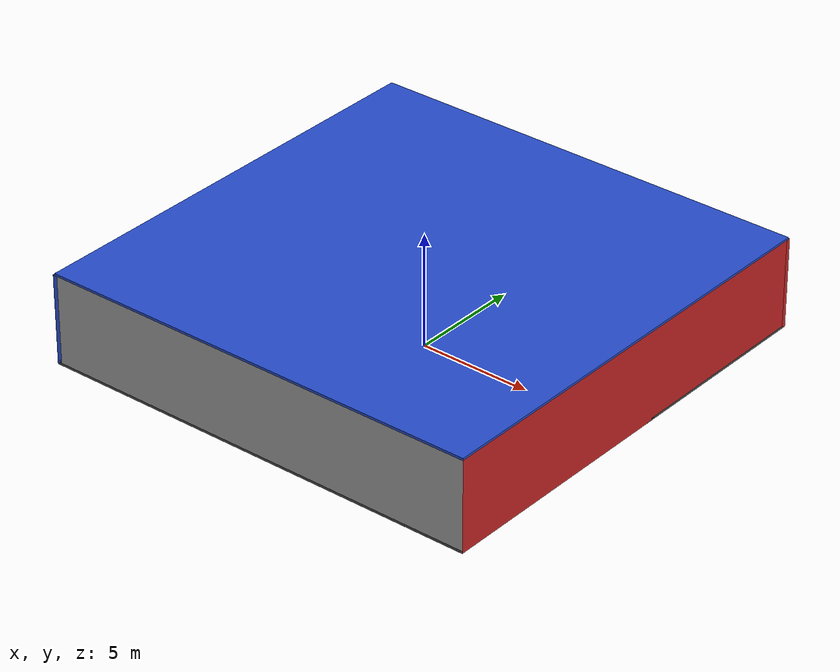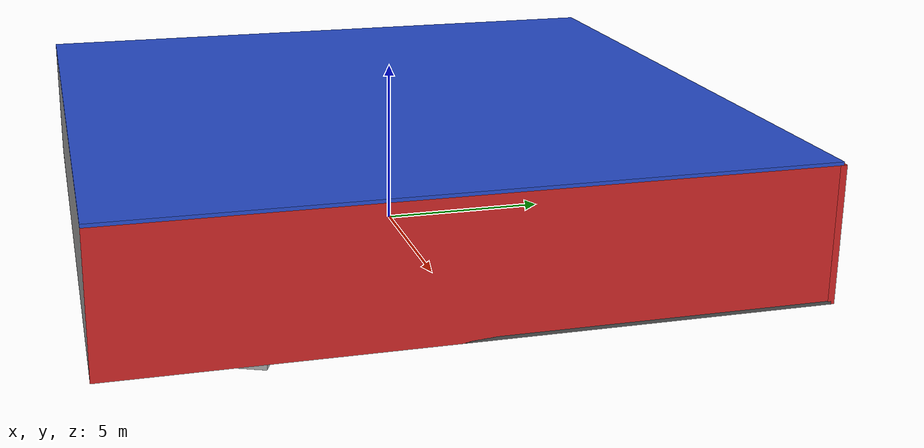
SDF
<sdf version="1.4">
 <world name="default">
  <physics type="ode">
   <max_step_size>0.001</max_step_size>
   <real_time_factor>1</real_time_factor>
   <real_time_update_rate>1000</real_time_update_rate>
   <gravity>0 0 -9.8</gravity>
  </physics>
  <scene><ambient>0.4 0.4 0.4 1</ambient><background>0.7 0.7 0.7 1</background><shadows>1</shadows></scene>
  <model name="Surrounding">
   <static>1</static>
   <link name="Ceiling">
    <collision name="Ceiling_Collision"><geometry><box><size>20 20 0.1</size></box></geometry></collision>
    <visual name="Ceiling_Visual">
     <geometry><box><size>20 20 0.1</size></box></geometry>
     <material>
      <script><uri>file://media/materials/scripts/gazebo.material</uri><name>Gazebo/BlueGlow</name></script>
     </material>
    </visual>
    <pose>0 0 4.05 0 0 0</pose>
   </link>
   <link name="Wall_South">
    <collision name="Wall_South_Collision">
     <geometry><box><size>20 0 4</size></box></geometry>
     <pose>0 0 2 0 -0 0</pose>
    </collision>
    <visual name="Wall_South_Visual">
     <pose>0 0 2 0 -0 0</pose>
     <geometry><box><size>20 0 4</size></box></geometry>
     <material>
      <script><uri>file://media/materials/scripts/gazebo.material</uri><name>Gazebo/GreyGradientSky</name></script>
     </material>
    </visual>
    <velocity_decay><linear>0</linear><angular>0</angular></velocity_decay>
    <pose>0 -10 0 0 -0 0</pose>
   </link>
   <link name="Wall_East">
    <collision name="Wall_21_Collision">
     <geometry><box><size>20 0 4</size></box></geometry>
     <pose>0 0 2 0 -0 0</pose>
    </collision>
    <visual name="Wall_21_Visual">
     <pose>0 0 2 0 -0 0</pose>
     <geometry><box><size>20 0 4</size></box></geometry>
     <material>
      <script><uri>file://media/materials/scripts/gazebo.material</uri><name>Gazebo/RedBright</name></script>
     </material>
    </visual>
    <velocity_decay><linear>0</linear><angular>0</angular></velocity_decay>
    <pose>10 0 0 0 -0 1.5708</pose>
   </link>
   <link name="Wall_North">
    <collision name="Wall_22_Collision">
     <geometry><box><size>20 0.2 4</size></box></geometry>
     <pose>0 0 2 0 -0 0</pose>
    </collision>
    <visual name="Wall_22_Visual">
     <pose>0 0 2 0 -0 0</pose>
     <geometry><box><size>20 0.2 4</size></box></geometry>
     <material>
      <script><uri>file://media/materials/scripts/gazebo.material</uri><name>Gazebo/RedBright</name></script>
     </material>
    </visual>
    <velocity_decay><linear>0</linear><angular>0</angular></velocity_decay>
    <pose>0 10 0 0 -0 0</pose>
   </link>
   <link name="Wall_West">
    <collision name="Wall_23_Collision">
     <geometry><box><size>20 0.2 4</size></box></geometry>
     <pose>0 0 2 0 -0 0</pose>
    </collision>
    <visual name="Wall_23_Visual">
     <pose>0 0 2 0 -0 0</pose>
     <geometry><box><size>20 0.2 4</size></box></geometry>
     <material>
      <script><uri>file://media/materials/scripts/gazebo.material</uri><name>Gazebo/BlueGlow</name></script>
     </material>
    </visual>
    <velocity_decay><linear>0</linear><angular>0</angular></velocity_decay>
    <pose>-10 0 0 0 0 -1.5708</pose>
   </link>
   <link name="Ground_link">
    <collision name="collision">
     <pose>0 0 .05 0 -0 0</pose>
     <geometry><box><size>20 20 0.1</size></box></geometry>
    </collision>
    <visual name="visual">
     <pose>0 0 .05 0 -0 0</pose>
     <geometry><box><size>20 20 0.1</size></box></geometry>
     <material>
      <script><uri>file://media/materials/scripts/gazebo.material</uri><name>Gazebo/Road</name></script>
     </material>
    </visual>
   </link>
   <static>1</static>
  </model>
  <spherical_coordinates>
   <surface_model>EARTH_WGS84</surface_model>
   <latitude_deg>0</latitude_deg>
   <longitude_deg>0</longitude_deg>
   <elevation>0</elevation>
   <heading_deg>0</heading_deg>
  </spherical_coordinates>
  <light name="lightball_0" type="diffuse">
   <diffuse>0.8 0.8 0.8 1</diffuse>
   <specular>0.2 0.2 0.2 1</specular>
   <attenuation>
    <range>100</range>
    <constant>0.7</constant>
    <linear>0.01</linear>
    <quadratic>0.001</quadratic>
   </attenuation>
   <direction>-0.5 0.1 -0.9</direction>
   <pose>-7.31852020414 -7.11890128871 1.03520570157 0 0 0</pose>
  </light>
  <light name="lightball_1" type="diffuse">
   <diffuse>0.8 0.8 0.8 1</diffuse>
   <specular>0.2 0.2 0.2 1</specular>
   <attenuation>
    <range>100</range>
    <constant>0.7</constant>
    <linear>0.01</linear>
    <quadratic>0.001</quadratic>
   </attenuation>
   <direction>-0.5 0.1 -0.9</direction>
   <pose>8.6136624231 -9.6317303567 2.52463257778 0 0 0</pose>
  </light>
  <light name="lightball_2" type="diffuse">
   <diffuse>0.8 0.8 0.8 1</diffuse>
   <specular>0.2 0.2 0.2 1</specular>
   <attenuation>
    <range>100</range>
    <constant>0.7</constant>
    <linear>0.01</linear>
    <quadratic>0.001</quadratic>
   </attenuation>
   <direction>-0.5 0.1 -0.9</direction>
   <pose>-8.46304456453 5.08467044105 1.41428970635 0 0 0</pose>
  </light>
  <include><uri>model://cabinet</uri><pose>-8.55626172304 -2.27001228079 0 0 0 1.83535193812</pose></include>
  <include><uri>model://cabinet</uri><pose>-4.56798390734 -3.49667145245 0 0 0 0.101302017597</pose></include>
  <include><uri>model://cabinet</uri><pose>-4.52477805772 4.60660899575 0 0 0 1.05043479148</pose></include>
  <include><uri>model://table</uri><pose>-1.58043718678 2.05965381393 0 0 0 1.14320395948</pose></include>
  <include>
   <uri>model://robocup_3Dsim_goal</uri>
   <pose>1.67973060551 -1.00690271046 0 0 0 2.13074508808</pose>
  </include>
  <include>
   <uri>model://construction_cone</uri>
   <pose>3.73119477936 -8.47539474362 0 0 0 2.13138672319</pose>
  </include>
  <include><uri>model://table</uri><pose>7.19152937121 -8.66832709778 0 0 0 1.36524990044</pose></include>
  <include>
   <uri>model://textured_shapes</uri>
   <pose>7.23735744968 -5.237871774 0 0 0 1.16792398179</pose>
  </include>
 </world>
</sdf>

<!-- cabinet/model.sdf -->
<sdf version="1.5">
  <model name="cabinet">
    <static>true</static>
    <link name="cabinet_bottom_plate">
      <inertial>
        <pose>0 0 -1 0 0 0</pose>
        <inertia>
          <ixx>2.050000</ixx>
          <ixy>0</ixy>
          <ixz>0</ixz>
          <iyy>2.050000</iyy>
          <iyz>0</iyz>
          <izz>2.050000</izz>
        </inertia>
        <mass>25.000000</mass>
      </inertial>
      <collision name="cabinet_bottom_plate_geom">
        <pose>0 0 0.010000 0 0 0</pose>
        <geometry>
          <box>
            <size>0.450000 0.450000 0.020000</size>
          </box>
        </geometry>
      </collision>
      <visual name="cabinet_bottom_plate_geom_visual">
        <pose>0 0 0.010000 0 0 0</pose>
        <geometry>
          <box>
            <size>0.450000 0.450000 0.020000</size>
          </box>
        </geometry>
        <material>
          <script>
            <uri>model://media/materials/scripts/gazebo.material</uri>
            <name>Gazebo/Wood</name>
          </script>
        </material>
      </visual>
      <collision name="cabinet_bottom_plate_geom_cabinet_back_plate">
        <pose>0.235000 0 0.510000 0 0 0</pose>
        <geometry>
          <box>
            <size>0.020000 0.450000 1.020000</size>
          </box>
        </geometry>
      </collision>
      <visual name="cabinet_bottom_plate_geom_cabinet_back_plate_visual">
        <pose>0.235000 0 0.510000 0 0 0</pose>
        <geometry>
          <box>
            <size>0.020000 0.450000 1.020000</size>
          </box>
        </geometry>
        <material>
          <script>
            <uri>model://media/materials/scripts/gazebo.material</uri>
            <name>Gazebo/Wood</name>
          </script>
        </material>
      </visual>
      <collision name="cabinet_bottom_plate_geom_cabinet_left_plate">
        <pose>0 0.235000 0.510000 0 0 0</pose>
        <geometry>
          <box>
            <size>0.450000 0.020000 1.020000</size>
          </box>
        </geometry>
      </collision>
      <visual name="cabinet_bottom_plate_geom_cabinet_left_plate_visual">
        <pose>0 0.235000 0.510000 0 0 0</pose>
        <geometry>
          <box>
            <size>0.450000 0.020000 1.020000</size>
          </box>
        </geometry>
        <material>
          <script>
            <uri>model://media/materials/scripts/gazebo.material</uri>
            <name>Gazebo/Wood</name>
          </script>
        </material>
      </visual>
      <collision name="cabinet_bottom_plate_geom_cabinet_middle_plate">
        <pose>0 0 0.510000 0 0 0</pose>
        <geometry>
          <box>
            <size>0.450000 0.450000 0.020000</size>
          </box>
        </geometry>
      </collision>
      <visual name="cabinet_bottom_plate_geom_cabinet_middle_plate_visual">
        <pose>0 0 0.510000 0 0 0</pose>
        <geometry>
          <box>
            <size>0.450000 0.450000 0.020000</size>
          </box>
        </geometry>
        <material>
          <script>
            <uri>model://media/materials/scripts/gazebo.material</uri>
            <name>Gazebo/Wood</name>
          </script>
        </material>
      </visual>
      <collision name="cabinet_bottom_plate_geom_cabinet_right_plate">
        <pose>0 -0.235000 0.510000 0 0 0</pose>
        <geometry>
          <box>
            <size>0.450000 0.020000 1.020000</size>
          </box>
        </geometry>
      </collision>
      <visual name="cabinet_bottom_plate_geom_cabinet_right_plate_visual">
        <pose>0 -0.235000 0.510000 0 0 0</pose>
        <geometry>
          <box>
            <size>0.450000 0.020000 1.020000</size>
          </box>
        </geometry>
        <material>
          <script>
            <uri>model://media/materials/scripts/gazebo.material</uri>
            <name>Gazebo/Wood</name>
          </script>
        </material>
      </visual>
      <collision name="cabinet_bottom_plate_geom_cabinet_top_plate">
        <pose>0 0 1.010000 0 0 0</pose>
        <geometry>
          <box>
            <size>0.450000 0.450000 0.020000</size>
          </box>
        </geometry>
      </collision>
      <visual name="cabinet_bottom_plate_geom_cabinet_top_plate_visual">
        <pose>0 0 1.010000 0 0 0</pose>
        <geometry>
          <box>
            <size>0.450000 0.450000 0.020000</size>
          </box>
        </geometry>
        <material>
          <script>
            <uri>model://media/materials/scripts/gazebo.material</uri>
            <name>Gazebo/Wood</name>
          </script>
        </material>
      </visual>
    </link>
  </model>
</sdf>

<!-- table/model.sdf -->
<sdf version="1.5">
  <model name="table">
    <static>true</static>
    <link name="link">
      <collision name="surface">
        <pose>0 0 1.0 0 0 0</pose>
        <geometry>
          <box>
            <size>1.5 0.8 0.03</size>
          </box>
        </geometry>
        <surface>
          <friction>
            <ode>
              <mu>0.6</mu>
              <mu2>0.6</mu2>
            </ode>
          </friction>
        </surface>
      </collision>
      <visual name="visual1">
        <pose>0 0 1.0 0 0 0</pose>
        <geometry>
          <box>
            <size>1.5 0.8 0.03</size>
          </box>
        </geometry>
        <material>
          <script>
            <uri>model://media/materials/scripts/gazebo.material</uri>
            <name>Gazebo/Wood</name>
          </script>
        </material>
      </visual>
      <collision name="front_left_leg">
        <pose>0.68 0.38 0.5 0 0 0</pose>
        <geometry>
          <cylinder>
            <radius>0.02</radius>
            <length>1.0</length>
          </cylinder>
        </geometry>
      </collision>
      <visual name="front_left_leg">
        <pose>0.68 0.38 0.5 0 0 0</pose>
        <geometry>
          <cylinder>
            <radius>0.02</radius>
            <length>1.0</length>
          </cylinder>
        </geometry>
        <material>
          <script>
            <uri>model://media/materials/scripts/gazebo.material</uri>
            <name>Gazebo/Grey</name>
          </script>
        </material>
      </visual>
      <collision name="front_right_leg">
        <pose>0.68 -0.38 0.5 0 0 0</pose>
        <geometry>
          <cylinder>
            <radius>0.02</radius>
            <length>1.0</length>
          </cylinder>
        </geometry>
      </collision>
      <visual name="front_right_leg">
        <pose>0.68 -0.38 0.5 0 0 0</pose>
        <geometry>
          <cylinder>
            <radius>0.02</radius>
            <length>1.0</length>
          </cylinder>
        </geometry>
        <material>
          <script>
            <uri>model://media/materials/scripts/gazebo.material</uri>
            <name>Gazebo/Grey</name>
          </script>
        </material>
      </visual>
      <collision name="back_right_leg">
        <pose>-0.68 -0.38 0.5 0 0 0</pose>
        <geometry>
          <cylinder>
            <radius>0.02</radius>
            <length>1.0</length>
          </cylinder>
        </geometry>
      </collision>
      <visual name="back_right_leg">
        <pose>-0.68 -0.38 0.5 0 0 0</pose>
        <geometry>
          <cylinder>
            <radius>0.02</radius>
            <length>1.0</length>
          </cylinder>
        </geometry>
        <material>
          <script>
            <uri>model://media/materials/scripts/gazebo.material</uri>
            <name>Gazebo/Grey</name>
          </script>
        </material>
      </visual>
      <collision name="back_left_leg">
        <pose>-0.68 0.38 0.5 0 0 0</pose>
        <geometry>
          <cylinder>
            <radius>0.02</radius>
            <length>1.0</length>
          </cylinder>
        </geometry>
      </collision>
      <visual name="back_left_leg">
        <pose>-0.68 0.38 0.5 0 0 0</pose>
        <geometry>
          <cylinder>
            <radius>0.02</radius>
            <length>1.0</length>
          </cylinder>
        </geometry>
        <material>
          <script>
            <uri>model://media/materials/scripts/gazebo.material</uri>
            <name>Gazebo/Grey</name>
          </script>
        </material>
      </visual>
    </link>
  </model>
</sdf>

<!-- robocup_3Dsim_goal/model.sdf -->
<sdf version="1.5">
  <model name="robocup_3d_goal">
    <static>true</static>
    <link name="left_post">
      <pose>0 1.05 0.45 0 0 0</pose>
      <collision name="collision">
        <geometry>
          <cylinder>
            <radius>0.05</radius>
            <length>0.9</length>
          </cylinder>
        </geometry>
      </collision>
      <visual name="visual">
        <geometry>
          <cylinder>
            <radius>0.05</radius>
            <length>0.9</length>
          </cylinder>
        </geometry>
        <material>
          <script>
            <uri>file://media/materials/scripts/gazebo.material</uri>
            <name>Gazebo/ZincYellow</name>
          </script>
        </material>
      </visual>
    </link>
    <link name="left_support_horiz_lower">
      <pose>0.30 1.05 0.01 0 0 0</pose>
      <collision name="collision">
        <geometry>
          <box>
            <size>0.50 0.02 0.02</size>
          </box>
        </geometry>
      </collision>
      <visual name="visual">
        <geometry>
          <box>
            <size>0.50 0.02 0.02</size>
          </box>
        </geometry>
        <material>
          <script>
            <uri>file://media/materials/scripts/gazebo.material</uri>
            <name>Gazebo/White</name>
          </script>
        </material>
      </visual>
    </link>
    <link name="left_support_horiz_upper">
      <pose>0.30 1.05 0.79 0 0 0</pose>
      <collision name="collision">
        <geometry>
          <box>
            <size>0.50 0.02 0.02</size>
          </box>
        </geometry>
      </collision>
      <visual name="visual">
        <geometry>
          <box>
            <size>0.50 0.02 0.02</size>
          </box>
        </geometry>
        <material>
          <script>
            <uri>file://media/materials/scripts/gazebo.material</uri>
            <name>Gazebo/White</name>
          </script>
        </material>
      </visual>
    </link>
    <link name="left_support_vertical">
      <pose>0.56 1.05 0.4 0 1.5708 0</pose>
      <collision name="collision">
        <geometry>
          <box>
            <size>0.80 0.02 0.02</size>
          </box>
        </geometry>
      </collision>
      <visual name="visual">
        <geometry>
          <box>
            <size>0.80 0.02 0.02</size>
          </box>
        </geometry>
        <material>
          <script>
            <uri>file://media/materials/scripts/gazebo.material</uri>
            <name>Gazebo/White</name>
          </script>
        </material>
      </visual>
    </link>
    <link name="right_support_horiz_lower">
      <pose>0.30 -1.05 0.01 0 0 0</pose>
      <collision name="collision">
        <geometry>
          <box>
            <size>0.50 0.02 0.02</size>
          </box>
        </geometry>
      </collision>
      <visual name="visual">
        <geometry>
          <box>
            <size>0.50 0.02 0.02</size>
          </box>
        </geometry>
        <material>
          <script>
            <uri>file://media/materials/scripts/gazebo.material</uri>
            <name>Gazebo/White</name>
          </script>
        </material>
      </visual>
    </link>
    <link name="right_support_horiz_upper">
      <pose>0.30 -1.05 0.79 0 0 0</pose>
      <collision name="collision">
        <geometry>
          <box>
            <size>0.50 0.02 0.02</size>
          </box>
        </geometry>
      </collision>
      <visual name="visual">
        <geometry>
          <box>
            <size>0.50 0.02 0.02</size>
          </box>
        </geometry>
        <material>
          <script>
            <uri>file://media/materials/scripts/gazebo.material</uri>
            <name>Gazebo/White</name>
          </script>
        </material>
      </visual>
    </link>
    <link name="right_support_vertical">
      <pose>0.56 -1.05 0.4 0 1.5708 0</pose>
      <collision name="collision">
        <geometry>
          <box>
            <size>0.80 0.02 0.02</size>
          </box>
        </geometry>
      </collision>
      <visual name="visual">
        <geometry>
          <box>
            <size>0.80 0.02 0.02</size>
          </box>
        </geometry>
        <material>
          <script>
            <uri>file://media/materials/scripts/gazebo.material</uri>
            <name>Gazebo/White</name>
          </script>
        </material>
      </visual>
    </link>
    <link name="center_support_horiz_lower">
      <pose>0.56 0 0.01 0 1.5708 0</pose>
      <collision name="collision">
        <geometry>
          <box>
            <size>0.02 2.08 0.02</size>
          </box>
        </geometry>
      </collision>
      <visual name="visual">
        <geometry>
          <box>
            <size>0.02 2.08 0.02</size>
          </box>
        </geometry>
        <material>
          <script>
            <uri>file://media/materials/scripts/gazebo.material</uri>
            <name>Gazebo/White</name>
          </script>
        </material>
      </visual>
    </link>
    <link name="center_support_horiz_upper">
      <pose>0.56 0 0.79 0 1.5708 0</pose>
      <collision name="collision">
        <geometry>
          <box>
            <size>0.02 2.08 0.02</size>
          </box>
        </geometry>
      </collision>
      <visual name="visual">
        <geometry>
          <box>
            <size>0.02 2.08 0.02</size>
          </box>
        </geometry>
        <material>
          <script>
            <uri>file://media/materials/scripts/gazebo.material</uri>
            <name>Gazebo/White</name>
          </script>
        </material>
      </visual>
    </link>
    <link name="right_post">
      <pose>0 -1.05 0.45 0 0 0</pose>
      <collision name="collision">
        <geometry>
          <cylinder>
            <radius>0.05</radius>
            <length>0.9</length>
          </cylinder>
        </geometry>
      </collision>
      <visual name="visual">
        <geometry>
          <cylinder>
            <radius>0.05</radius>
            <length>0.9</length>
          </cylinder>
        </geometry>
        <material>
          <script>
            <uri>file://media/materials/scripts/gazebo.material</uri>
            <name>Gazebo/ZincYellow</name>
          </script>
        </material>
      </visual>
    </link>
    <link name="crossbar">
      <pose>0 0 0.85 1.57 1.57 0</pose>
      <collision name="collision">
        <geometry>
          <cylinder>
            <radius>0.05</radius>
            <length>2.0</length>
          </cylinder>
        </geometry>
      </collision>
      <visual name="visual">
        <geometry>
          <cylinder>
            <radius>0.05</radius>
            <length>2.0</length>
          </cylinder>
        </geometry>
        <material>
          <script>
            <uri>file://media/materials/scripts/gazebo.material</uri>
            <name>Gazebo/ZincYellow</name>
          </script>
        </material>
      </visual>
    </link>
    <link name="center_net">
      <pose>0.56 0 0.40 0 0 0</pose>
      <collision name="collision">
        <geometry>
          <box>
            <size>0.01 2.1 0.80</size>
          </box>
        </geometry>
      </collision>
      <visual name="visual">
        <geometry>
          <box>
            <size>0.01 2.1 0.80</size>
          </box>
        </geometry>
        <material>
          <script>
            <uri>model://../model_source/models/robocup09_spl_field/materials/scripts/</uri>
            <uri>model://../model_source/models/robocup09_spl_field/materials/textures/</uri>
            <name>RoboCup/Net</name>
          </script>
        </material>
      </visual>
    </link>
    <link name="left_net">
      <pose>0.30 1.05 0.40 0 0 0</pose>
      <collision name="collision">
        <geometry>
          <box>
            <size>0.50 0.01 0.76</size>
          </box>
        </geometry>
      </collision>
      <visual name="visual">
        <geometry>
          <box>
            <size>0.50 0.01 0.76</size>
          </box>
        </geometry>
        <material>
          <script>
            <uri>model://../model_source/models/robocup09_spl_field/materials/scripts/</uri>
            <uri>model://../model_source/models/robocup09_spl_field/materials/textures/</uri>
            <name>RoboCup/Net</name>
          </script>
        </material>
      </visual>
    </link>
    <link name="right_net">
      <pose>0.30 -1.05 0.40 0 0 0</pose>
      <collision name="collision">
        <geometry>
          <box>
            <size>0.50 0.01 0.76</size>
          </box>
        </geometry>
      </collision>
      <visual name="visual">
        <geometry>
          <box>
            <size>0.50 0.01 0.76</size>
          </box>
        </geometry>
        <material>
          <script>
            <uri>model://../model_source/models/robocup09_spl_field/materials/scripts/</uri>
            <uri>model://../model_source/models/robocup09_spl_field/materials/textures/</uri>
            <name>RoboCup/Net</name>
          </script>
        </material>
      </visual>
    </link>
  </model>
</sdf>

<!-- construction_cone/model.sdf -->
<sdf version="1.5">
  <model name="Construction Cone">
    <link name="link">
      <collision name="collision">
        <geometry>
          <mesh>
            <scale>10 10 10</scale>
            <uri>file://isr-testbed/construction_cone/meshes/construction_cone.dae</uri>
          </mesh>
        </geometry>
      </collision>
      <visual name="visual">
        <geometry>
          <mesh>
            <scale>10 10 10</scale>
            <uri>file://isr-testbed/construction_cone/meshes/construction_cone.dae</uri>
          </mesh>
        </geometry>
      </visual>
    </link>
  </model>
</sdf>

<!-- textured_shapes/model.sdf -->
<sdf version="1.6">
  <model name="textured_shapes">
    <pose>0 0 0.5 0 0 0</pose>
    <link name="box">
      <pose>0 -1.5 0 0 0 0</pose>
      <collision name="collision">
        <geometry>
          <box>
            <size>1 1 1</size>
          </box>
        </geometry>
      </collision>
      <visual name="visual">
        <geometry>
          <box>
            <size>1 1 1</size>
          </box>
        </geometry>
        <material>
          <script>
            <uri>model://../model_source/models/textured_shapes/materials/scripts</uri>
            <uri>model://../model_source/models/textured_shapes/materials/textures</uri>
            <name>TexturedShape/Squares</name>
          </script>
        </material>
      </visual>
    </link>
    <link name="sphere">
      <collision name="collision">
        <geometry>
          <sphere>
            <radius>0.5</radius>
          </sphere>
        </geometry>
      </collision>
      <visual name="visual">
        <geometry>
          <sphere>
            <radius>0.5</radius>
          </sphere>
        </geometry>
        <material>
          <script>
            <uri>model://../model_source/models/textured_shapes/materials/scripts</uri>
            <uri>model://../model_source/models/textured_shapes/materials/textures</uri>
            <name>TexturedShape/Squares</name>
          </script>
        </material>
      </visual>
    </link>
    <link name="cylinder">
      <pose>0 1.5 0 0 0 0</pose>
      <collision name="collision">
        <geometry>
          <cylinder>
            <radius>0.5</radius>
            <length>1</length>
          </cylinder>
        </geometry>
      </collision>
      <visual name="visual">
        <geometry>
          <cylinder>
            <radius>0.5</radius>
            <length>1</length>
          </cylinder>
        </geometry>
        <material>
          <script>
            <uri>model://../model_source/models/textured_shapes/materials/scripts</uri>
            <uri>model://../model_source/models/textured_shapes/materials/textures</uri>
            <name>TexturedShape/Squares</name>
          </script>
        </material>
      </visual>
    </link>
  </model>
</sdf>
